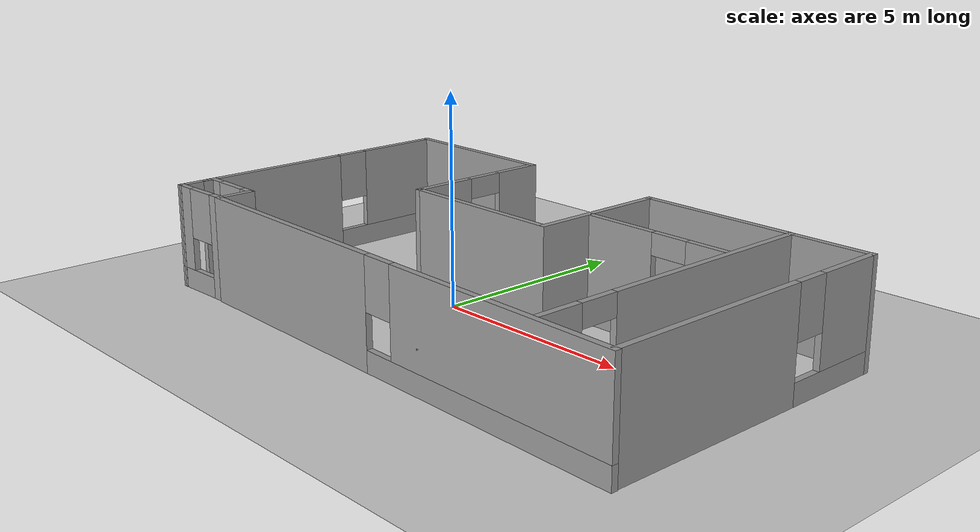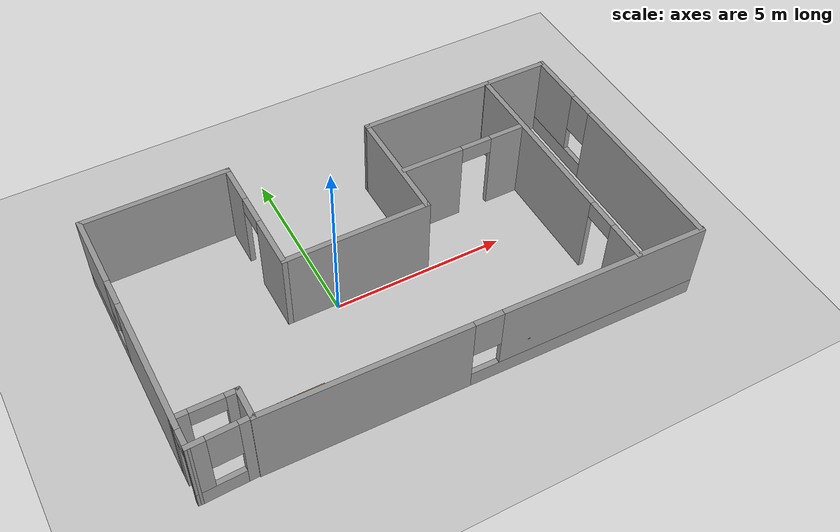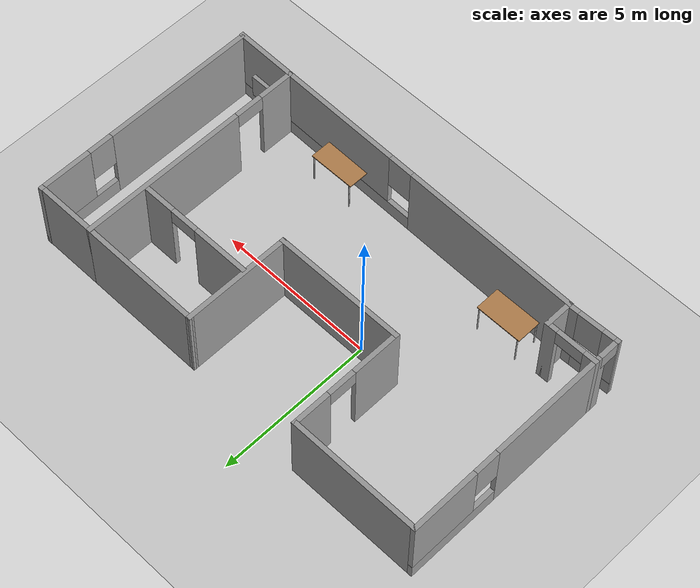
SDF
<sdf version="1.6">
 <world name="default">
  <light name="sun" type="directional">
   <pose>0 0 10 0 -0 0</pose>
   <diffuse>0.8 0.8 0.8 1</diffuse>
   <specular>0.2 0.2 0.2 1</specular>
   <attenuation>
    <range>1000</range>
    <constant>0.9</constant>
    <linear>0.01</linear>
    <quadratic>0.001</quadratic>
   </attenuation>
   <direction>-0.5 0.1 -0.9</direction>
  </light>
  <model name="ground_plane">
   <static>1</static>
   <link name="link">
    <collision name="collision">
     <geometry><plane><normal>0 0 1</normal><size>100 100</size></plane></geometry>
     <surface>
      <contact><collide_bitmask>65535</collide_bitmask></contact>
      <friction><ode><mu>100</mu><mu2>50</mu2></ode></friction>
     </surface>
    </collision>
    <visual name="visual">
     <cast_shadows>0</cast_shadows>
     <geometry><plane><normal>0 0 1</normal><size>100 100</size></plane></geometry>
     <material>
      <script><uri>file://media/materials/scripts/gazebo.material</uri><name>Gazebo/Grey</name></script>
     </material>
    </visual>
   </link>
  </model>
  <gravity>0 0 -9.8</gravity>
  <magnetic_field>6e-06 2.3e-05 -4.2e-05</magnetic_field>
  <atmosphere type="adiabatic"/>
  <physics name="default_physics" default="0" type="ode">
   <max_step_size>0.001</max_step_size>
   <real_time_factor>1</real_time_factor>
   <real_time_update_rate>1000</real_time_update_rate>
  </physics>
  <scene><ambient>0.4 0.4 0.4 1</ambient><background>0.7 0.7 0.7 1</background><shadows>1</shadows></scene>
  <spherical_coordinates>
   <surface_model>EARTH_WGS84</surface_model>
   <latitude_deg>0</latitude_deg>
   <longitude_deg>0</longitude_deg>
   <elevation>0</elevation>
   <heading_deg>0</heading_deg>
  </spherical_coordinates>
  <model name="class">
   <pose>1.54338 -0.063628 0 0 -0 0</pose>
   <link name="Wall_0">
    <pose>-6.98338 0.408628 0 0 -0 1.5708</pose>
    <visual name="Wall_0_Visual_0">
     <pose>-1.50964 0 1.25 0 -0 0</pose>
     <geometry><box><size>3.98071 0.15 2.5</size></box></geometry>
     <material>
      <script><uri>file://media/materials/scripts/gazebo.material</uri><name>Gazebo/Grey</name></script>
      <ambient>1 1 1 1</ambient>
     </material>
     <meta><layer>0</layer></meta>
    </visual>
    <collision name="Wall_0_Collision_0">
     <geometry><box><size>3.98071 0.15 2.5</size></box></geometry>
     <pose>-1.50964 0 1.25 0 -0 0</pose>
    </collision>
    <visual name="Wall_0_Visual_1">
     <pose>1.99036 0 0.25 0 -0 0</pose>
     <geometry><box><size>3.01929 0.15 0.5</size></box></geometry>
     <material>
      <script><uri>file://media/materials/scripts/gazebo.material</uri><name>Gazebo/Grey</name></script>
      <ambient>1 1 1 1</ambient>
     </material>
     <meta><layer>0</layer></meta>
    </visual>
    <collision name="Wall_0_Collision_1">
     <geometry><box><size>3.01929 0.15 0.5</size></box></geometry>
     <pose>1.99036 0 0.25 0 -0 0</pose>
    </collision>
    <visual name="Wall_0_Visual_2">
     <pose>2.39036 0 1.5 0 -0 0</pose>
     <geometry><box><size>2.21929 0.15 2</size></box></geometry>
     <material>
      <script><uri>file://media/materials/scripts/gazebo.material</uri><name>Gazebo/Grey</name></script>
      <ambient>1 1 1 1</ambient>
     </material>
     <meta><layer>0</layer></meta>
    </visual>
    <collision name="Wall_0_Collision_2">
     <geometry><box><size>2.21929 0.15 2</size></box></geometry>
     <pose>2.39036 0 1.5 0 -0 0</pose>
    </collision>
    <visual name="Wall_0_Visual_3">
     <pose>0.880714 0 1.9 0 -0 0</pose>
     <geometry><box><size>0.8 0.15 1.2</size></box></geometry>
     <material>
      <script><uri>file://media/materials/scripts/gazebo.material</uri><name>Gazebo/Grey</name></script>
      <ambient>1 1 1 1</ambient>
     </material>
     <meta><layer>0</layer></meta>
    </visual>
    <collision name="Wall_0_Collision_3">
     <geometry><box><size>0.8 0.15 1.2</size></box></geometry>
     <pose>0.880714 0 1.9 0 -0 0</pose>
    </collision>
   </link>
   <link name="Wall_13">
    <collision name="Wall_13_Collision">
     <geometry><box><size>4.25 0.15 2.5</size></box></geometry>
     <pose>0 0 1.25 0 -0 0</pose>
    </collision>
    <visual name="Wall_13_Visual">
     <pose>0 0 1.25 0 -0 0</pose>
     <geometry><box><size>4.25 0.15 2.5</size></box></geometry>
     <material>
      <script><uri>file://media/materials/scripts/gazebo.material</uri><name>Gazebo/Grey</name></script>
      <ambient>1 1 1 1</ambient>
     </material>
     <meta><layer>0</layer></meta>
    </visual>
    <pose>-4.93338 3.83363 0 0 -0 0</pose>
   </link>
   <link name="Wall_14">
    <pose>-2.88338 2.03363 0 0 0 -1.5708</pose>
    <visual name="Wall_14_Visual_0">
     <pose>-1.24935 0 1.25 0 -0 0</pose>
     <geometry><box><size>1.25129 0.15 2.5</size></box></geometry>
     <material>
      <script><uri>file://media/materials/scripts/gazebo.material</uri><name>Gazebo/Grey</name></script>
      <ambient>1 1 1 1</ambient>
     </material>
     <meta><layer>0</layer></meta>
    </visual>
    <collision name="Wall_14_Collision_0">
     <geometry><box><size>1.25129 0.15 2.5</size></box></geometry>
     <pose>-1.24935 0 1.25 0 -0 0</pose>
    </collision>
    <visual name="Wall_14_Visual_1">
     <pose>1.07565 0 1.25 0 -0 0</pose>
     <geometry><box><size>1.59871 0.15 2.5</size></box></geometry>
     <material>
      <script><uri>file://media/materials/scripts/gazebo.material</uri><name>Gazebo/Grey</name></script>
      <ambient>1 1 1 1</ambient>
     </material>
     <meta><layer>0</layer></meta>
    </visual>
    <collision name="Wall_14_Collision_1">
     <geometry><box><size>1.59871 0.15 2.5</size></box></geometry>
     <pose>1.07565 0 1.25 0 -0 0</pose>
    </collision>
    <visual name="Wall_14_Visual_2">
     <pose>-0.173708 0 2.25 0 -0 0</pose>
     <geometry><box><size>0.9 0.15 0.5</size></box></geometry>
     <material>
      <script><uri>file://media/materials/scripts/gazebo.material</uri><name>Gazebo/Grey</name></script>
      <ambient>1 1 1 1</ambient>
     </material>
     <meta><layer>0</layer></meta>
    </visual>
    <collision name="Wall_14_Collision_2">
     <geometry><box><size>0.9 0.15 0.5</size></box></geometry>
     <pose>-0.173708 0 2.25 0 -0 0</pose>
    </collision>
   </link>
   <link name="Wall_15">
    <collision name="Wall_15_Collision">
     <geometry><box><size>4.25 0.15 2.5</size></box></geometry>
     <pose>0 0 1.25 0 -0 0</pose>
    </collision>
    <visual name="Wall_15_Visual">
     <pose>0 0 1.25 0 -0 0</pose>
     <geometry><box><size>4.25 0.15 2.5</size></box></geometry>
     <material>
      <script><uri>file://media/materials/scripts/gazebo.material</uri><name>Gazebo/Grey</name></script>
      <ambient>1 1 1 1</ambient>
     </material>
     <meta><layer>0</layer></meta>
    </visual>
    <pose>-0.833377 0.233628 0 0 -0 0</pose>
   </link>
   <link name="Wall_16">
    <collision name="Wall_16_Collision">
     <geometry><box><size>3.5 0.15 2.5</size></box></geometry>
     <pose>0 0 1.25 0 -0 0</pose>
    </collision>
    <visual name="Wall_16_Visual">
     <pose>0 0 1.25 0 -0 0</pose>
     <geometry><box><size>3.5 0.15 2.5</size></box></geometry>
     <material>
      <script><uri>file://media/materials/scripts/gazebo.material</uri><name>Gazebo/Grey</name></script>
      <ambient>1 1 1 1</ambient>
     </material>
     <meta><layer>0</layer></meta>
    </visual>
    <pose>1.21662 1.90863 0 0 -0 1.5708</pose>
   </link>
   <link name="Wall_17">
    <collision name="Wall_17_Collision">
     <geometry><box><size>3.99399 0.15 2.5</size></box></geometry>
     <pose>0 0 1.25 0 -0 0</pose>
    </collision>
    <visual name="Wall_17_Visual">
     <pose>0 0 1.25 0 -0 0</pose>
     <geometry><box><size>3.99399 0.15 2.5</size></box></geometry>
     <material>
      <script><uri>file://media/materials/scripts/gazebo.material</uri><name>Gazebo/Grey</name></script>
      <ambient>1 1 1 1</ambient>
     </material>
     <meta><layer>0</layer></meta>
    </visual>
    <pose>3.13862 3.58112 0 0 0 -0.001304</pose>
   </link>
   <link name="Wall_18">
    <pose>5.06061 -0.096385 0 0 0 -1.5708</pose>
    <visual name="Wall_18_Visual_0">
     <pose>-1.0444 0 1.25 0 -0 0</pose>
     <geometry><box><size>5.41121 0.15 2.5</size></box></geometry>
     <material>
      <script><uri>file://media/materials/scripts/gazebo.material</uri><name>Gazebo/Grey</name></script>
      <ambient>1 1 1 1</ambient>
     </material>
     <meta><layer>0</layer></meta>
    </visual>
    <collision name="Wall_18_Collision_0">
     <geometry><box><size>5.41121 0.15 2.5</size></box></geometry>
     <pose>-1.0444 0 1.25 0 -0 0</pose>
    </collision>
    <visual name="Wall_18_Visual_1">
     <pose>3.1556 0 1.25 0 -0 0</pose>
     <geometry><box><size>1.18879 0.15 2.5</size></box></geometry>
     <material>
      <script><uri>file://media/materials/scripts/gazebo.material</uri><name>Gazebo/Grey</name></script>
      <ambient>1 1 1 1</ambient>
     </material>
     <meta><layer>0</layer></meta>
    </visual>
    <collision name="Wall_18_Collision_1">
     <geometry><box><size>1.18879 0.15 2.5</size></box></geometry>
     <pose>3.1556 0 1.25 0 -0 0</pose>
    </collision>
    <visual name="Wall_18_Visual_2">
     <pose>2.11121 0 2.25 0 -0 0</pose>
     <geometry><box><size>0.9 0.15 0.5</size></box></geometry>
     <material>
      <script><uri>file://media/materials/scripts/gazebo.material</uri><name>Gazebo/Grey</name></script>
      <ambient>1 1 1 1</ambient>
     </material>
     <meta><layer>0</layer></meta>
    </visual>
    <collision name="Wall_18_Collision_2">
     <geometry><box><size>0.9 0.15 0.5</size></box></geometry>
     <pose>2.11121 0 2.25 0 -0 0</pose>
    </collision>
   </link>
   <link name="Wall_20">
    <pose>6.96662 -0.088002 0 0 -0 1.5708</pose>
    <visual name="Wall_20_Visual_0">
     <pose>-1.27038 0 1.25 0 -0 0</pose>
     <geometry><box><size>4.95923 0.15 2.5</size></box></geometry>
     <material>
      <script><uri>file://media/materials/scripts/gazebo.material</uri><name>Gazebo/Grey</name></script>
      <ambient>1 1 1 1</ambient>
     </material>
     <meta><layer>0</layer></meta>
    </visual>
    <collision name="Wall_20_Collision_0">
     <geometry><box><size>4.95923 0.15 2.5</size></box></geometry>
     <pose>-1.27038 0 1.25 0 -0 0</pose>
    </collision>
    <visual name="Wall_20_Visual_1">
     <pose>2.47962 0 0.25 0 -0 0</pose>
     <geometry><box><size>2.54076 0.15 0.5</size></box></geometry>
     <material>
      <script><uri>file://media/materials/scripts/gazebo.material</uri><name>Gazebo/Grey</name></script>
      <ambient>1 1 1 1</ambient>
     </material>
     <meta><layer>0</layer></meta>
    </visual>
    <collision name="Wall_20_Collision_1">
     <geometry><box><size>2.54076 0.15 0.5</size></box></geometry>
     <pose>2.47962 0 0.25 0 -0 0</pose>
    </collision>
    <visual name="Wall_20_Visual_2">
     <pose>2.87962 0 1.5 0 -0 0</pose>
     <geometry><box><size>1.74076 0.15 2</size></box></geometry>
     <material>
      <script><uri>file://media/materials/scripts/gazebo.material</uri><name>Gazebo/Grey</name></script>
      <ambient>1 1 1 1</ambient>
     </material>
     <meta><layer>0</layer></meta>
    </visual>
    <collision name="Wall_20_Collision_2">
     <geometry><box><size>1.74076 0.15 2</size></box></geometry>
     <pose>2.87962 0 1.5 0 -0 0</pose>
    </collision>
    <visual name="Wall_20_Visual_3">
     <pose>1.60923 0 1.9 0 -0 0</pose>
     <geometry><box><size>0.8 0.15 1.2</size></box></geometry>
     <material>
      <script><uri>file://media/materials/scripts/gazebo.material</uri><name>Gazebo/Grey</name></script>
      <ambient>1 1 1 1</ambient>
     </material>
     <meta><layer>0</layer></meta>
    </visual>
    <collision name="Wall_20_Collision_3">
     <geometry><box><size>0.8 0.15 1.2</size></box></geometry>
     <pose>1.60923 0 1.9 0 -0 0</pose>
    </collision>
   </link>
   <link name="Wall_22">
    <collision name="Wall_22_Collision">
     <geometry><box><size>2 0.15 2.5</size></box></geometry>
     <pose>0 0 1.25 0 -0 0</pose>
    </collision>
    <visual name="Wall_22_Visual">
     <pose>0 0 1.25 0 -0 0</pose>
     <geometry><box><size>2 0.15 2.5</size></box></geometry>
     <material>
      <script><uri>file://media/materials/scripts/gazebo.material</uri><name>Gazebo/Grey</name></script>
      <ambient>1 1 1 1</ambient>
     </material>
     <meta><layer>0</layer></meta>
    </visual>
    <pose>5.96831 3.57862 0 0 -0 0</pose>
   </link>
   <link name="Wall_25">
    <collision name="Wall_25_Collision">
     <geometry><box><size>0.15 0.15 2.5</size></box></geometry>
     <pose>0 0 1.25 0 -0 0</pose>
    </collision>
    <visual name="Wall_25_Visual">
     <pose>0 0 1.25 0 -0 0</pose>
     <geometry><box><size>0.15 0.15 2.5</size></box></geometry>
     <material>
      <script><uri>file://media/materials/scripts/gazebo.material</uri><name>Gazebo/Grey</name></script>
      <ambient>1 1 1 1</ambient>
     </material>
     <meta><layer>0</layer></meta>
    </visual>
    <pose>6.96662 3.587 0 0 -0 0</pose>
   </link>
   <link name="Wall_27">
    <pose>3.11204 1.60739 0 0 -0 0</pose>
    <visual name="Wall_27_Visual_0">
     <pose>-0.955861 0 1.25 0 -0 0</pose>
     <geometry><box><size>1.83828 0.15 2.5</size></box></geometry>
     <material>
      <script><uri>file://media/materials/scripts/gazebo.material</uri><name>Gazebo/Grey</name></script>
      <ambient>1 1 1 1</ambient>
     </material>
     <meta><layer>0</layer></meta>
    </visual>
    <collision name="Wall_27_Collision_0">
     <geometry><box><size>1.83828 0.15 2.5</size></box></geometry>
     <pose>-0.955861 0 1.25 0 -0 0</pose>
    </collision>
    <visual name="Wall_27_Visual_1">
     <pose>1.36914 0 1.25 0 -0 0</pose>
     <geometry><box><size>1.01172 0.15 2.5</size></box></geometry>
     <material>
      <script><uri>file://media/materials/scripts/gazebo.material</uri><name>Gazebo/Grey</name></script>
      <ambient>1 1 1 1</ambient>
     </material>
     <meta><layer>0</layer></meta>
    </visual>
    <collision name="Wall_27_Collision_1">
     <geometry><box><size>1.01172 0.15 2.5</size></box></geometry>
     <pose>1.36914 0 1.25 0 -0 0</pose>
    </collision>
    <visual name="Wall_27_Visual_2">
     <pose>0.413279 0 2.25 0 -0 0</pose>
     <geometry><box><size>0.9 0.15 0.5</size></box></geometry>
     <material>
      <script><uri>file://media/materials/scripts/gazebo.material</uri><name>Gazebo/Grey</name></script>
      <ambient>1 1 1 1</ambient>
     </material>
     <meta><layer>0</layer></meta>
    </visual>
    <collision name="Wall_27_Collision_2">
     <geometry><box><size>0.9 0.15 0.5</size></box></geometry>
     <pose>0.413279 0 2.25 0 -0 0</pose>
    </collision>
   </link>
   <link name="Wall_4">
    <pose>-6.18338 -2.76637 0 0 -0 0</pose>
    <visual name="Wall_4_Visual_0">
     <pose>-0.6525 0 1.25 0 -0 0</pose>
     <geometry><box><size>0.445 0.15 2.5</size></box></geometry>
     <material>
      <script><uri>file://media/materials/scripts/gazebo.material</uri><name>Gazebo/Grey</name></script>
      <ambient>1 1 1 1</ambient>
     </material>
     <meta><layer>0</layer></meta>
    </visual>
    <collision name="Wall_4_Collision_0">
     <geometry><box><size>0.445 0.15 2.5</size></box></geometry>
     <pose>-0.6525 0 1.25 0 -0 0</pose>
    </collision>
    <visual name="Wall_4_Visual_1">
     <pose>0.6725 0 1.25 0 -0 0</pose>
     <geometry><box><size>0.405 0.15 2.5</size></box></geometry>
     <material>
      <script><uri>file://media/materials/scripts/gazebo.material</uri><name>Gazebo/Grey</name></script>
      <ambient>1 1 1 1</ambient>
     </material>
     <meta><layer>0</layer></meta>
    </visual>
    <collision name="Wall_4_Collision_1">
     <geometry><box><size>0.405 0.15 2.5</size></box></geometry>
     <pose>0.6725 0 1.25 0 -0 0</pose>
    </collision>
    <visual name="Wall_4_Visual_2">
     <pose>0.02 0 2.25 0 -0 0</pose>
     <geometry><box><size>0.9 0.15 0.5</size></box></geometry>
     <material>
      <script><uri>file://media/materials/scripts/gazebo.material</uri><name>Gazebo/Grey</name></script>
      <ambient>1 1 1 1</ambient>
     </material>
     <meta><layer>0</layer></meta>
    </visual>
    <collision name="Wall_4_Collision_2">
     <geometry><box><size>0.9 0.15 0.5</size></box></geometry>
     <pose>0.02 0 2.25 0 -0 0</pose>
    </collision>
   </link>
   <link name="Wall_5">
    <collision name="Wall_5_Collision">
     <geometry><box><size>0.947399 0.15 2.5</size></box></geometry>
     <pose>0 0 1.25 0 -0 0</pose>
    </collision>
    <visual name="Wall_5_Visual">
     <pose>0 0 1.25 0 -0 0</pose>
     <geometry><box><size>0.947399 0.15 2.5</size></box></geometry>
     <material>
      <script><uri>file://media/materials/scripts/gazebo.material</uri><name>Gazebo/Grey</name></script>
      <ambient>1 1 1 1</ambient>
     </material>
     <meta><layer>0</layer></meta>
    </visual>
    <pose>-5.38338 -3.16507 0 0 0 -1.5708</pose>
   </link>
   <link name="Wall_6">
    <pose>-6.18338 -3.59007 0 0 0 -3.10873</pose>
    <visual name="Wall_6_Visual_0">
     <pose>-0.661609 0 1.25 0 -0 0</pose>
     <geometry><box><size>0.426781 0.15 2.5</size></box></geometry>
     <material>
      <script><uri>file://media/materials/scripts/gazebo.material</uri><name>Gazebo/Grey</name></script>
      <ambient>1 1 1 1</ambient>
     </material>
     <meta><layer>0</layer></meta>
    </visual>
    <collision name="Wall_6_Collision_0">
     <geometry><box><size>0.426781 0.15 2.5</size></box></geometry>
     <pose>-0.661609 0 1.25 0 -0 0</pose>
    </collision>
    <visual name="Wall_6_Visual_1">
     <pose>0.213391 0 0.25 0 -0 0</pose>
     <geometry><box><size>1.32322 0.15 0.5</size></box></geometry>
     <material>
      <script><uri>file://media/materials/scripts/gazebo.material</uri><name>Gazebo/Grey</name></script>
      <ambient>1 1 1 1</ambient>
     </material>
     <meta><layer>0</layer></meta>
    </visual>
    <collision name="Wall_6_Collision_1">
     <geometry><box><size>1.32322 0.15 0.5</size></box></geometry>
     <pose>0.213391 0 0.25 0 -0 0</pose>
    </collision>
    <visual name="Wall_6_Visual_2">
     <pose>0.613391 0 1.5 0 -0 0</pose>
     <geometry><box><size>0.523219 0.15 2</size></box></geometry>
     <material>
      <script><uri>file://media/materials/scripts/gazebo.material</uri><name>Gazebo/Grey</name></script>
      <ambient>1 1 1 1</ambient>
     </material>
     <meta><layer>0</layer></meta>
    </visual>
    <collision name="Wall_6_Collision_2">
     <geometry><box><size>0.523219 0.15 2</size></box></geometry>
     <pose>0.613391 0 1.5 0 -0 0</pose>
    </collision>
    <visual name="Wall_6_Visual_3">
     <pose>-0.048219 0 1.9 0 -0 0</pose>
     <geometry><box><size>0.8 0.15 1.2</size></box></geometry>
     <material>
      <script><uri>file://media/materials/scripts/gazebo.material</uri><name>Gazebo/Grey</name></script>
      <ambient>1 1 1 1</ambient>
     </material>
     <meta><layer>0</layer></meta>
    </visual>
    <collision name="Wall_6_Collision_3">
     <geometry><box><size>0.8 0.15 1.2</size></box></geometry>
     <pose>-0.048219 0 1.9 0 -0 0</pose>
    </collision>
   </link>
   <link name="Wall_7">
    <pose>-6.98338 -3.31637 0 0 -0 1.5708</pose>
    <visual name="Wall_7_Visual_0">
     <pose>-0.3025 0 1.25 0 -0 0</pose>
     <geometry><box><size>0.145 0.15 2.5</size></box></geometry>
     <material>
      <script><uri>file://media/materials/scripts/gazebo.material</uri><name>Gazebo/Grey</name></script>
      <ambient>1 1 1 1</ambient>
     </material>
     <meta><layer>0</layer></meta>
    </visual>
    <collision name="Wall_7_Collision_0">
     <geometry><box><size>0.145 0.15 2.5</size></box></geometry>
     <pose>-0.3025 0 1.25 0 -0 0</pose>
    </collision>
    <visual name="Wall_7_Visual_1">
     <pose>0.0725 0 2.25 0 -0 0</pose>
     <geometry><box><size>0.605 0.15 0.5</size></box></geometry>
     <material>
      <script><uri>file://media/materials/scripts/gazebo.material</uri><name>Gazebo/Grey</name></script>
      <ambient>1 1 1 1</ambient>
     </material>
     <meta><layer>0</layer></meta>
    </visual>
    <collision name="Wall_7_Collision_1">
     <geometry><box><size>0.605 0.15 0.5</size></box></geometry>
     <pose>0.0725 0 2.25 0 -0 0</pose>
    </collision>
   </link>
   <link name="Wall_9">
    <pose>0.800269 -3.71112 0 0 0 -0.019574</pose>
    <visual name="Wall_9_Visual_0">
     <pose>-3.37935 0 1.25 0 -0 0</pose>
     <geometry><box><size>5.76096 0.15 2.5</size></box></geometry>
     <material>
      <script><uri>file://media/materials/scripts/gazebo.material</uri><name>Gazebo/Grey</name></script>
      <ambient>1 1 1 1</ambient>
     </material>
     <meta><layer>0</layer></meta>
    </visual>
    <collision name="Wall_9_Collision_0">
     <geometry><box><size>5.76096 0.15 2.5</size></box></geometry>
     <pose>-3.37935 0 1.25 0 -0 0</pose>
    </collision>
    <visual name="Wall_9_Visual_1">
     <pose>2.88048 0 0.25 0 -0 0</pose>
     <geometry><box><size>6.7587 0.15 0.5</size></box></geometry>
     <material>
      <script><uri>file://media/materials/scripts/gazebo.material</uri><name>Gazebo/Grey</name></script>
      <ambient>1 1 1 1</ambient>
     </material>
     <meta><layer>0</layer></meta>
    </visual>
    <collision name="Wall_9_Collision_1">
     <geometry><box><size>6.7587 0.15 0.5</size></box></geometry>
     <pose>2.88048 0 0.25 0 -0 0</pose>
    </collision>
    <visual name="Wall_9_Visual_2">
     <pose>3.28048 0 1.5 0 -0 0</pose>
     <geometry><box><size>5.9587 0.15 2</size></box></geometry>
     <material>
      <script><uri>file://media/materials/scripts/gazebo.material</uri><name>Gazebo/Grey</name></script>
      <ambient>1 1 1 1</ambient>
     </material>
     <meta><layer>0</layer></meta>
    </visual>
    <collision name="Wall_9_Collision_2">
     <geometry><box><size>5.9587 0.15 2</size></box></geometry>
     <pose>3.28048 0 1.5 0 -0 0</pose>
    </collision>
    <visual name="Wall_9_Visual_3">
     <pose>-0.098869 0 1.9 0 -0 0</pose>
     <geometry><box><size>0.8 0.15 1.2</size></box></geometry>
     <material>
      <script><uri>file://media/materials/scripts/gazebo.material</uri><name>Gazebo/Grey</name></script>
      <ambient>1 1 1 1</ambient>
     </material>
     <meta><layer>0</layer></meta>
    </visual>
    <collision name="Wall_9_Collision_3">
     <geometry><box><size>0.8 0.15 1.2</size></box></geometry>
     <pose>-0.098869 0 1.9 0 -0 0</pose>
    </collision>
   </link>
   <link name="Window_7">
    <collision name="Window_7_Collision">
     <geometry><box><size>0.8 0.17 0.8</size></box></geometry>
     <pose>0 0 0.4 0 -0 0</pose>
    </collision>
    <visual name="Window_7_Visual">
     <pose>0 0 0.4 0 -0 0</pose>
     <geometry><box><size>0.8 0.17 0.8</size></box></geometry>
     <material>
      <script><uri>file://media/materials/scripts/gazebo.material</uri><name>Gazebo/Grey</name></script>
     </material>
    </visual>
    <pose>6.03109 -3.69912 0.5 0 -0 0</pose>
   </link>
   <static>1</static>
  </model>
  <model name="table">
   <static>1</static>
   <link name="link">
    <collision name="surface">
     <pose>0 0 1 0 -0 0</pose>
     <geometry><box><size>1.5 0.8 0.03</size></box></geometry>
     <surface><friction><ode><mu>0.6</mu><mu2>0.6</mu2></ode></friction></surface>
    </collision>
    <visual name="visual1">
     <pose>0 0 1 0 -0 0</pose>
     <geometry><box><size>1.5 0.8 0.03</size></box></geometry>
     <material>
      <script><uri>file://media/materials/scripts/gazebo.material</uri><name>Gazebo/Wood</name></script>
     </material>
    </visual>
    <collision name="front_left_leg">
     <pose>0.68 0.38 0.5 0 -0 0</pose>
     <geometry><cylinder><radius>0.02</radius><length>1</length></cylinder></geometry>
    </collision>
    <visual name="front_left_leg">
     <pose>0.68 0.38 0.5 0 -0 0</pose>
     <geometry><cylinder><radius>0.02</radius><length>1</length></cylinder></geometry>
     <material>
      <script><uri>file://media/materials/scripts/gazebo.material</uri><name>Gazebo/Grey</name></script>
     </material>
    </visual>
    <collision name="front_right_leg">
     <pose>0.68 -0.38 0.5 0 -0 0</pose>
     <geometry><cylinder><radius>0.02</radius><length>1</length></cylinder></geometry>
    </collision>
    <visual name="front_right_leg">
     <pose>0.68 -0.38 0.5 0 -0 0</pose>
     <geometry><cylinder><radius>0.02</radius><length>1</length></cylinder></geometry>
     <material>
      <script><uri>file://media/materials/scripts/gazebo.material</uri><name>Gazebo/Grey</name></script>
     </material>
    </visual>
    <collision name="back_right_leg">
     <pose>-0.68 -0.38 0.5 0 -0 0</pose>
     <geometry><cylinder><radius>0.02</radius><length>1</length></cylinder></geometry>
    </collision>
    <visual name="back_right_leg">
     <pose>-0.68 -0.38 0.5 0 -0 0</pose>
     <geometry><cylinder><radius>0.02</radius><length>1</length></cylinder></geometry>
     <material>
      <script><uri>file://media/materials/scripts/gazebo.material</uri><name>Gazebo/Grey</name></script>
     </material>
    </visual>
    <collision name="back_left_leg">
     <pose>-0.68 0.38 0.5 0 -0 0</pose>
     <geometry><cylinder><radius>0.02</radius><length>1</length></cylinder></geometry>
    </collision>
    <visual name="back_left_leg">
     <pose>-0.68 0.38 0.5 0 -0 0</pose>
     <geometry><cylinder><radius>0.02</radius><length>1</length></cylinder></geometry>
     <material>
      <script><uri>file://media/materials/scripts/gazebo.material</uri><name>Gazebo/Grey</name></script>
     </material>
    </visual>
   </link>
   <pose>-2.40581 -3.05552 0 0 -0 0</pose>
  </model>
  <model name="wood_block_10_2_1cm">
   <link name="link">
    <pose>0 0 0.005 0 -0 0</pose>
    <inertial>
     <mass>0.0125</mass>
     <inertia>
      <ixx>7.55208e-07</ixx>
      <ixy>0</ixy>
      <ixz>0</ixz>
      <iyy>1.05208e-05</iyy>
      <iyz>0</iyz>
      <izz>1.10677e-05</izz>
     </inertia>
    </inertial>
    <collision name="collision">
     <geometry><box><size>0.1 0.025 0.01</size></box></geometry>
     <surface>
      <contact>
       <poissons_ratio>0.347</poissons_ratio>
       <elastic_modulus>8.8e+09</elastic_modulus>
       <ode><kp>100000</kp><kd>1</kd><max_vel>1</max_vel><min_depth>0.001</min_depth></ode>
      </contact>
      <friction>
       <torsional>
        <coefficient>1</coefficient>
        <use_patch_radius>0</use_patch_radius>
        <surface_radius>0.05</surface_radius>
       </torsional>
      </friction>
     </surface>
    </collision>
    <visual name="visual">
     <geometry><box><size>0.1 0.025 0.01</size></box></geometry>
     <material>
      <script><uri>file://media/materials/scripts/gazebo.material</uri><name>Gazebo/Wood</name></script>
     </material>
    </visual>
   </link>
   <pose>-1.68696 -3.52068 -0.0006 2.3e-05 -6e-06 0</pose>
  </model>
  <model name="table_0">
   <static>1</static>
   <link name="link">
    <collision name="surface">
     <pose>0 0 1 0 -0 0</pose>
     <geometry><box><size>1.5 0.8 0.03</size></box></geometry>
     <surface><friction><ode><mu>0.6</mu><mu2>0.6</mu2></ode></friction></surface>
    </collision>
    <visual name="visual1">
     <pose>0 0 1 0 -0 0</pose>
     <geometry><box><size>1.5 0.8 0.03</size></box></geometry>
     <material>
      <script><uri>file://media/materials/scripts/gazebo.material</uri><name>Gazebo/Wood</name></script>
     </material>
    </visual>
    <collision name="front_left_leg">
     <pose>0.68 0.38 0.5 0 -0 0</pose>
     <geometry><cylinder><radius>0.02</radius><length>1</length></cylinder></geometry>
    </collision>
    <visual name="front_left_leg">
     <pose>0.68 0.38 0.5 0 -0 0</pose>
     <geometry><cylinder><radius>0.02</radius><length>1</length></cylinder></geometry>
     <material>
      <script><uri>file://media/materials/scripts/gazebo.material</uri><name>Gazebo/Grey</name></script>
     </material>
    </visual>
    <collision name="front_right_leg">
     <pose>0.68 -0.38 0.5 0 -0 0</pose>
     <geometry><cylinder><radius>0.02</radius><length>1</length></cylinder></geometry>
    </collision>
    <visual name="front_right_leg">
     <pose>0.68 -0.38 0.5 0 -0 0</pose>
     <geometry><cylinder><radius>0.02</radius><length>1</length></cylinder></geometry>
     <material>
      <script><uri>file://media/materials/scripts/gazebo.material</uri><name>Gazebo/Grey</name></script>
     </material>
    </visual>
    <collision name="back_right_leg">
     <pose>-0.68 -0.38 0.5 0 -0 0</pose>
     <geometry><cylinder><radius>0.02</radius><length>1</length></cylinder></geometry>
    </collision>
    <visual name="back_right_leg">
     <pose>-0.68 -0.38 0.5 0 -0 0</pose>
     <geometry><cylinder><radius>0.02</radius><length>1</length></cylinder></geometry>
     <material>
      <script><uri>file://media/materials/scripts/gazebo.material</uri><name>Gazebo/Grey</name></script>
     </material>
    </visual>
    <collision name="back_left_leg">
     <pose>-0.68 0.38 0.5 0 -0 0</pose>
     <geometry><cylinder><radius>0.02</radius><length>1</length></cylinder></geometry>
    </collision>
    <visual name="back_left_leg">
     <pose>-0.68 0.38 0.5 0 -0 0</pose>
     <geometry><cylinder><radius>0.02</radius><length>1</length></cylinder></geometry>
     <material>
      <script><uri>file://media/materials/scripts/gazebo.material</uri><name>Gazebo/Grey</name></script>
     </material>
    </visual>
   </link>
   <pose>4.20835 -3.47265 0 0 -0 0</pose>
  </model>
 </world>
</sdf>
